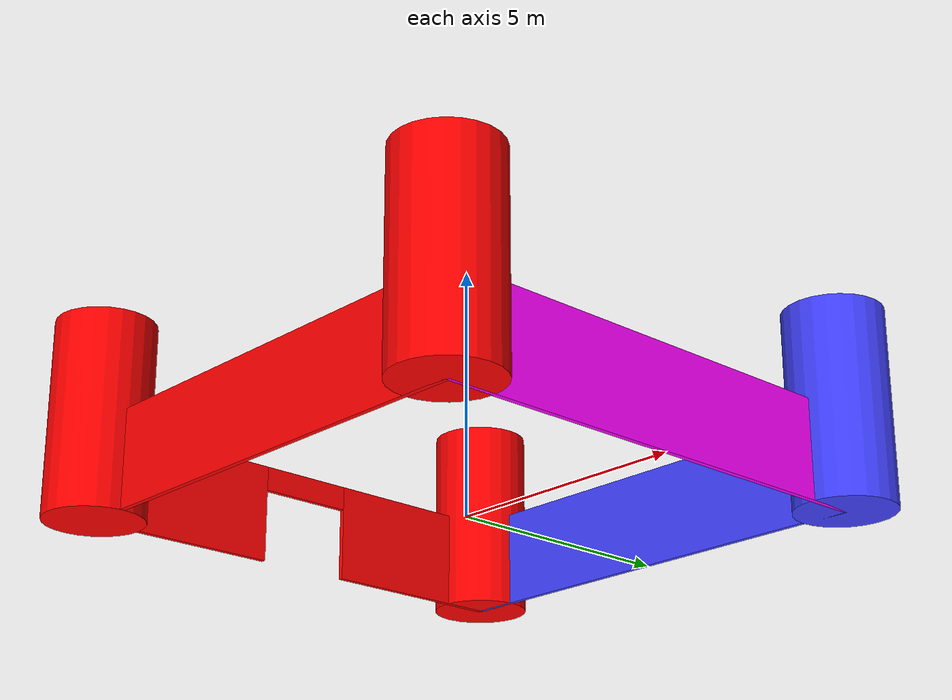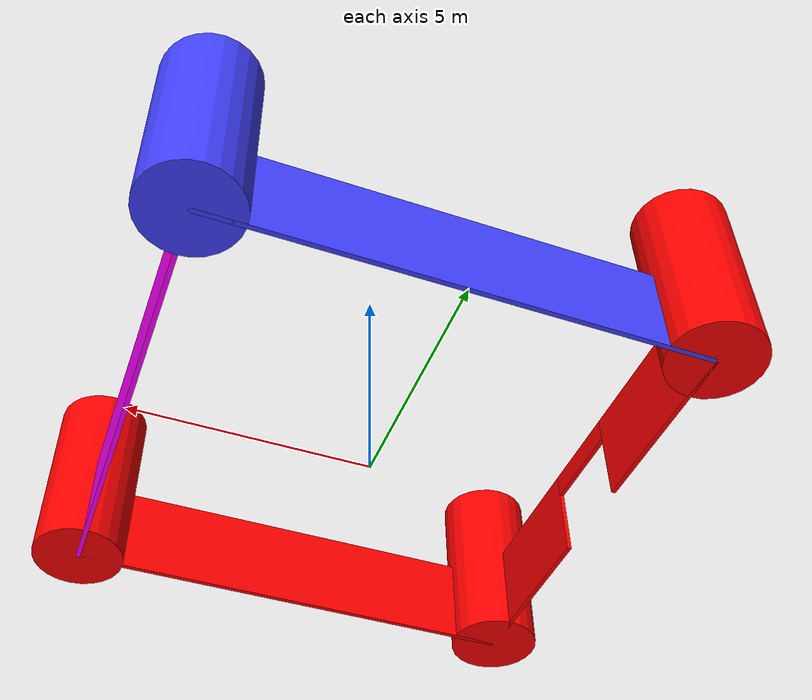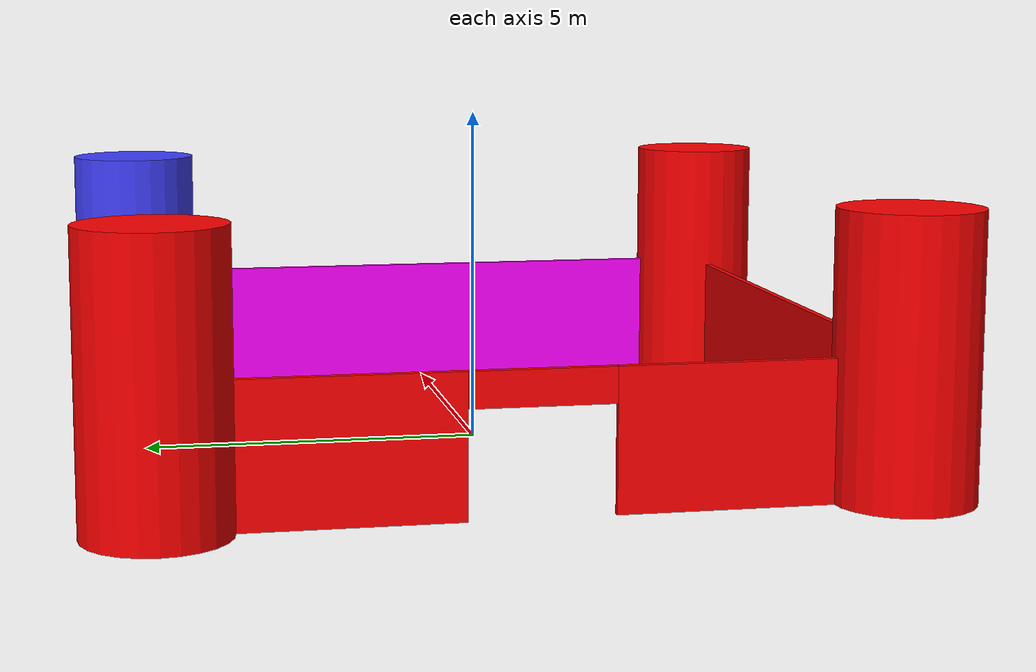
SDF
<sdf version='1.9'>
  <model name='robot'>
    <link name='base'>
      <inertial>
        <pose>-1 -1 2.35 0 0 0</pose>
        <mass>10</mass>
        <inertia>
          <ixx>719.35833333333323</ixx>
          <ixy>-72.000000000000043</ixy>
          <ixz>-16</ixz>
          <iyy>519.35833333333335</iyy>
          <iyz>-16</iyz>
          <izz>1218</izz>
        </inertia>
      </inertial>
      <collision name='base_fixed_joint_lump__NE_tower_link_collision'>
        <pose>5 5 2 0 0 0</pose>
        <geometry>
          <cylinder>
            <length>4</length>
            <radius>1</radius>
          </cylinder>
        </geometry>
      </collision>
      <collision name='base_fixed_joint_lump__NW_tower_link_collision_1'>
        <pose>-5 5 2 0 0 0</pose>
        <geometry>
          <cylinder>
            <length>4</length>
            <radius>1</radius>
          </cylinder>
        </geometry>
      </collision>
      <collision name='base_fixed_joint_lump__SE_tower_link_collision_2'>
        <pose>5 -5 2 0 0 0</pose>
        <geometry>
          <cylinder>
            <length>4</length>
            <radius>1</radius>
          </cylinder>
        </geometry>
      </collision>
      <collision name='base_fixed_joint_lump__SW_tower_link_collision_3'>
        <pose>-5 -5 2 0 0 0</pose>
        <geometry>
          <cylinder>
            <length>4</length>
            <radius>1</radius>
          </cylinder>
        </geometry>
      </collision>
      <collision name='base_fixed_joint_lump__door_link_collision_4'>
        <pose>-5 0 1.75 0 0 1.570796326794896</pose>
        <geometry>
          <box>
            <size>2 0.1 2</size>
          </box>
        </geometry>
      </collision>
      <collision name='base_fixed_joint_lump__east_wall_link_collision_5'>
        <pose>5 0 1 0 0 1.570796326794896</pose>
        <geometry>
          <box>
            <size>10 0.1 2</size>
          </box>
        </geometry>
      </collision>
      <collision name='base_fixed_joint_lump__north_wall_link_collision_6'>
        <pose>0 5 1 0 0 0</pose>
        <geometry>
          <box>
            <size>10 0.1 2</size>
          </box>
        </geometry>
      </collision>
      <collision name='base_fixed_joint_lump__south_wall_link_collision_7'>
        <pose>0 -5 1 0 0 0</pose>
        <geometry>
          <box>
            <size>10 0.1 2</size>
          </box>
        </geometry>
      </collision>
      <collision name='base_fixed_joint_lump__west_wall1_link_collision_8'>
        <pose>-5 3 1 0 0 1.570796326794896</pose>
        <geometry>
          <box>
            <size>4 0.1 2</size>
          </box>
        </geometry>
      </collision>
      <collision name='base_fixed_joint_lump__west_wall2_link_collision_9'>
        <pose>-5 -3 1 0 0 1.570796326794896</pose>
        <geometry>
          <box>
            <size>4 0.1 2</size>
          </box>
        </geometry>
      </collision>
      <visual name='base_fixed_joint_lump__NE_tower_link_visual'>
        <pose>5 5 2 0 0 0</pose>
        <geometry>
          <cylinder>
            <length>4</length>
            <radius>1</radius>
          </cylinder>
        </geometry>
        <material>
          <diffuse>0.25 0.25 1 1</diffuse>
          <ambient>0.25 0.25 1 1</ambient>
        </material>
      </visual>
      <visual name='base_fixed_joint_lump__NW_tower_link_visual_1'>
        <pose>-5 5 2 0 0 0</pose>
        <geometry>
          <cylinder>
            <length>4</length>
            <radius>1</radius>
          </cylinder>
        </geometry>
        <material>
          <diffuse>1 0 0 1</diffuse>
          <ambient>1 0 0 1</ambient>
        </material>
      </visual>
      <visual name='base_fixed_joint_lump__SE_tower_link_visual_2'>
        <pose>5 -5 2 0 0 0</pose>
        <geometry>
          <cylinder>
            <length>4</length>
            <radius>1</radius>
          </cylinder>
        </geometry>
        <material>
          <diffuse>1 0 0 1</diffuse>
          <ambient>1 0 0 1</ambient>
        </material>
      </visual>
      <visual name='base_fixed_joint_lump__SW_tower_link_visual_3'>
        <pose>-5 -5 2 0 0 0</pose>
        <geometry>
          <cylinder>
            <length>4</length>
            <radius>1</radius>
          </cylinder>
        </geometry>
        <material>
          <diffuse>1 0 0 1</diffuse>
          <ambient>1 0 0 1</ambient>
        </material>
      </visual>
      <visual name='base_fixed_joint_lump__door_link_visual_4'>
        <pose>-5 0 1.75 0 0 1.570796326794896</pose>
        <geometry>
          <box>
            <size>2 0.1 0.5</size>
          </box>
        </geometry>
        <material>
          <diffuse>1 0 0 1</diffuse>
          <ambient>1 0 0 1</ambient>
        </material>
      </visual>
      <visual name='base_fixed_joint_lump__east_wall_link_visual_5'>
        <pose>5 0 1 0 0 1.570796326794896</pose>
        <geometry>
          <box>
            <size>10 0.1 2</size>
          </box>
        </geometry>
        <material>
          <diffuse>1 0 1 1</diffuse>
          <ambient>1 0 1 1</ambient>
        </material>
      </visual>
      <visual name='base_fixed_joint_lump__north_wall_link_visual_6'>
        <pose>0 5 1 0 0 0</pose>
        <geometry>
          <box>
            <size>10 0.1 2</size>
          </box>
        </geometry>
        <material>
          <diffuse>0.25 0.25 1 1</diffuse>
          <ambient>0.25 0.25 1 1</ambient>
        </material>
      </visual>
      <visual name='base_fixed_joint_lump__south_wall_link_visual_7'>
        <pose>0 -5 1 0 0 0</pose>
        <geometry>
          <box>
            <size>10 0.1 2</size>
          </box>
        </geometry>
        <material>
          <diffuse>1 0 0 1</diffuse>
          <ambient>1 0 0 1</ambient>
        </material>
      </visual>
      <visual name='base_fixed_joint_lump__west_wall1_link_visual_8'>
        <pose>-5 3 1 0 0 1.570796326794896</pose>
        <geometry>
          <box>
            <size>4 0.1 2</size>
          </box>
        </geometry>
        <material>
          <diffuse>1 0 0 1</diffuse>
          <ambient>1 0 0 1</ambient>
        </material>
      </visual>
      <visual name='base_fixed_joint_lump__west_wall2_link_visual_9'>
        <pose>-5 -3 1 0 0 1.570796326794896</pose>
        <geometry>
          <box>
            <size>4 0.1 2</size>
          </box>
        </geometry>
        <material>
          <diffuse>1 0 0 1</diffuse>
          <ambient>1 0 0 1</ambient>
        </material>
      </visual>
    </link>
    <frame name='NE_tower' attached_to='base'>
      <pose>5 5 2 0 -0 0</pose>
    </frame>
    <frame name='NE_tower_link' attached_to='NE_tower'/>
    <frame name='NW_tower' attached_to='base'>
      <pose>-5 5 2 0 -0 0</pose>
    </frame>
    <frame name='NW_tower_link' attached_to='NW_tower'/>
    <frame name='SE_tower' attached_to='base'>
      <pose>5 -5 2 0 -0 0</pose>
    </frame>
    <frame name='SE_tower_link' attached_to='SE_tower'/>
    <frame name='SW_tower' attached_to='base'>
      <pose>-5 -5 2 0 -0 0</pose>
    </frame>
    <frame name='SW_tower_link' attached_to='SW_tower'/>
    <frame name='door' attached_to='base'>
      <pose>-5 0 1.75 0 -0 1.5708</pose>
    </frame>
    <frame name='door_link' attached_to='door'/>
    <frame name='east_wall' attached_to='base'>
      <pose>5 0 1 0 -0 1.5708</pose>
    </frame>
    <frame name='east_wall_link' attached_to='east_wall'/>
    <frame name='north_wall' attached_to='base'>
      <pose>0 5 1 0 -0 0</pose>
    </frame>
    <frame name='north_wall_link' attached_to='north_wall'/>
    <frame name='south_wall' attached_to='base'>
      <pose>0 -5 1 0 -0 0</pose>
    </frame>
    <frame name='south_wall_link' attached_to='south_wall'/>
    <frame name='west_wall1' attached_to='base'>
      <pose>-5 3 1 0 -0 1.5708</pose>
    </frame>
    <frame name='west_wall1_link' attached_to='west_wall1'/>
    <frame name='west_wall2' attached_to='base'>
      <pose>-5 -3 1 0 -0 1.5708</pose>
    </frame>
    <frame name='west_wall2_link' attached_to='west_wall2'/>
  </model>
</sdf>
